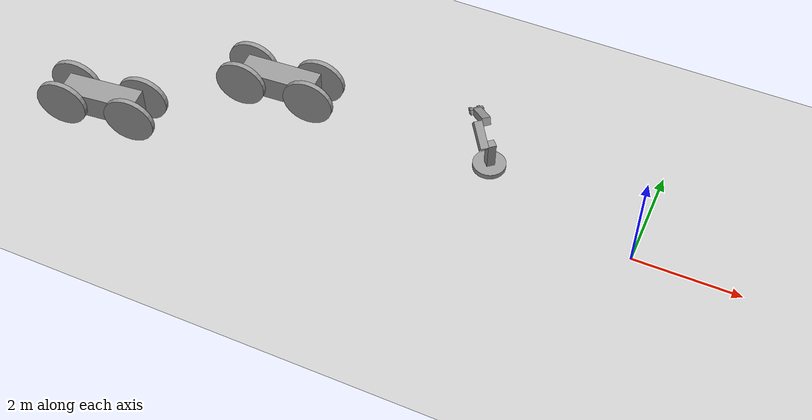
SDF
<sdf version="1.7">
 <world name="default">
  <model name="ground_plane">
   <static>1</static>
   <link name="link">
    <collision name="collision">
     <geometry><plane><normal>0 0 1</normal><size>100 100</size></plane></geometry>
     <surface>
      <contact><collide_bitmask>65535</collide_bitmask></contact>
      <friction><ode><mu>100</mu><mu2>50</mu2></ode></friction>
     </surface>
    </collision>
    <visual name="visual">
     <cast_shadows>0</cast_shadows>
     <geometry><plane><normal>0 0 1</normal><size>100 100</size></plane></geometry>
     <material>
      <script><uri>file://media/materials/scripts/gazebo.material</uri><name>Gazebo/Grey</name></script>
     </material>
    </visual>
   </link>
  </model>
  <model name="car_robot">
   <link name="link_0">
    <inertial>
     <mass>1</mass>
     <inertia>
      <ixx>0.166667</ixx>
      <ixy>0</ixy>
      <ixz>0</ixz>
      <iyy>0.166667</iyy>
      <iyz>0</iyz>
      <izz>0.166667</izz>
     </inertia>
    </inertial>
    <pose>-0.017732 0 0 0 -0 0</pose>
    <visual name="visual">
     <geometry><box><size>1.5 0.5 0.5</size></box></geometry>
     <material>
      <lighting>1</lighting>
      <script><uri>file://media/materials/scripts/gazebo.material</uri><name>Gazebo/Grey</name></script>
      <shader type="pixel"><normal_map>__default__</normal_map></shader>
      <ambient>0.3 0.3 0.3 1</ambient>
      <diffuse>0.7 0.7 0.7 1</diffuse>
      <specular>0.01 0.01 0.01 1</specular>
      <emissive>0 0 0 1</emissive>
     </material>
    </visual>
    <collision name="collision">
     <geometry><box><size>1.5 0.5 0.5</size></box></geometry>
     <surface>
      <friction>
       <ode><mu>1</mu><mu2>1</mu2><fdir1>0 0 0</fdir1><slip1>0</slip1><slip2>0</slip2></ode>
       <torsional>
        <coefficient>1</coefficient>
        <patch_radius>0</patch_radius>
        <surface_radius>0</surface_radius>
        <use_patch_radius>1</use_patch_radius>
        <ode><slip>0</slip></ode>
       </torsional>
      </friction>
      <bounce><restitution_coefficient>0</restitution_coefficient><threshold>1e+06</threshold></bounce>
      <contact>
       <collide_without_contact>0</collide_without_contact>
       <collide_without_contact_bitmask>1</collide_without_contact_bitmask>
       <collide_bitmask>1</collide_bitmask>
       <ode>
        <soft_cfm>0</soft_cfm>
        <soft_erp>0.2</soft_erp>
        <kp>1e+13</kp>
        <kd>1</kd>
        <max_vel>0.01</max_vel>
        <min_depth>0</min_depth>
       </ode>
       <bullet>
        <split_impulse>1</split_impulse>
        <split_impulse_penetration_threshold>-0.01</split_impulse_penetration_threshold>
        <soft_cfm>0</soft_cfm>
        <soft_erp>0.2</soft_erp>
        <kp>1e+13</kp>
        <kd>1</kd>
       </bullet>
      </contact>
     </surface>
    </collision>
   </link>
   <link name="link_1">
    <inertial>
     <mass>1</mass>
     <inertia><ixx>0.145833</ixx><ixy>0</ixy><ixz>0</ixz><iyy>0.145833</iyy><iyz>0</iyz><izz>0.125</izz></inertia>
    </inertial>
    <pose>-0.717732 -0.300002 0 1.5708 -0 0</pose>
    <visual name="visual">
     <geometry><cylinder><radius>0.5</radius><length>0.1</length></cylinder></geometry>
     <material>
      <lighting>1</lighting>
      <script><uri>file://media/materials/scripts/gazebo.material</uri><name>Gazebo/Grey</name></script>
      <shader type="pixel"><normal_map>__default__</normal_map></shader>
      <ambient>0.3 0.3 0.3 1</ambient>
      <diffuse>0.7 0.7 0.7 1</diffuse>
      <specular>0.01 0.01 0.01 1</specular>
      <emissive>0 0 0 1</emissive>
     </material>
    </visual>
    <collision name="collision">
     <geometry><cylinder><radius>0.5</radius><length>0.1</length></cylinder></geometry>
     <surface>
      <friction>
       <ode><mu>1</mu><mu2>1</mu2><fdir1>0 0 0</fdir1><slip1>0</slip1><slip2>0</slip2></ode>
       <torsional>
        <coefficient>1</coefficient>
        <patch_radius>0</patch_radius>
        <surface_radius>0</surface_radius>
        <use_patch_radius>1</use_patch_radius>
        <ode><slip>0</slip></ode>
       </torsional>
      </friction>
      <bounce><restitution_coefficient>0</restitution_coefficient><threshold>1e+06</threshold></bounce>
      <contact>
       <collide_without_contact>0</collide_without_contact>
       <collide_without_contact_bitmask>1</collide_without_contact_bitmask>
       <collide_bitmask>1</collide_bitmask>
       <ode>
        <soft_cfm>0</soft_cfm>
        <soft_erp>0.2</soft_erp>
        <kp>1e+13</kp>
        <kd>1</kd>
        <max_vel>0.01</max_vel>
        <min_depth>0</min_depth>
       </ode>
       <bullet>
        <split_impulse>1</split_impulse>
        <split_impulse_penetration_threshold>-0.01</split_impulse_penetration_threshold>
        <soft_cfm>0</soft_cfm>
        <soft_erp>0.2</soft_erp>
        <kp>1e+13</kp>
        <kd>1</kd>
       </bullet>
      </contact>
     </surface>
    </collision>
   </link>
   <link name="link_1_clone">
    <inertial>
     <mass>1</mass>
     <inertia><ixx>0.145833</ixx><ixy>0</ixy><ixz>0</ixz><iyy>0.145833</iyy><iyz>0</iyz><izz>0.125</izz></inertia>
    </inertial>
    <pose>0.682268 -0.300002 0 1.5708 -0 0</pose>
    <visual name="visual">
     <geometry><cylinder><radius>0.5</radius><length>0.1</length></cylinder></geometry>
     <material>
      <lighting>1</lighting>
      <script><uri>file://media/materials/scripts/gazebo.material</uri><name>Gazebo/Grey</name></script>
      <shader type="pixel"><normal_map>__default__</normal_map></shader>
      <ambient>0.3 0.3 0.3 1</ambient>
      <diffuse>0.7 0.7 0.7 1</diffuse>
      <specular>0.01 0.01 0.01 1</specular>
      <emissive>0 0 0 1</emissive>
     </material>
    </visual>
    <collision name="collision">
     <geometry><cylinder><radius>0.5</radius><length>0.1</length></cylinder></geometry>
     <surface>
      <friction>
       <ode><mu>1</mu><mu2>1</mu2><fdir1>0 0 0</fdir1><slip1>0</slip1><slip2>0</slip2></ode>
       <torsional>
        <coefficient>1</coefficient>
        <patch_radius>0</patch_radius>
        <surface_radius>0</surface_radius>
        <use_patch_radius>1</use_patch_radius>
        <ode><slip>0</slip></ode>
       </torsional>
      </friction>
      <bounce><restitution_coefficient>0</restitution_coefficient><threshold>1e+06</threshold></bounce>
      <contact>
       <collide_without_contact>0</collide_without_contact>
       <collide_without_contact_bitmask>1</collide_without_contact_bitmask>
       <collide_bitmask>1</collide_bitmask>
       <ode>
        <soft_cfm>0</soft_cfm>
        <soft_erp>0.2</soft_erp>
        <kp>1e+13</kp>
        <kd>1</kd>
        <max_vel>0.01</max_vel>
        <min_depth>0</min_depth>
       </ode>
       <bullet>
        <split_impulse>1</split_impulse>
        <split_impulse_penetration_threshold>-0.01</split_impulse_penetration_threshold>
        <soft_cfm>0</soft_cfm>
        <soft_erp>0.2</soft_erp>
        <kp>1e+13</kp>
        <kd>1</kd>
       </bullet>
      </contact>
     </surface>
    </collision>
   </link>
   <link name="link_1_clone_0">
    <inertial>
     <mass>1</mass>
     <inertia><ixx>0.145833</ixx><ixy>0</ixy><ixz>0</ixz><iyy>0.145833</iyy><iyz>0</iyz><izz>0.125</izz></inertia>
    </inertial>
    <pose>-0.717732 0.300002 0 1.5708 -0 0</pose>
    <visual name="visual">
     <geometry><cylinder><radius>0.5</radius><length>0.1</length></cylinder></geometry>
     <material>
      <lighting>1</lighting>
      <script><uri>file://media/materials/scripts/gazebo.material</uri><name>Gazebo/Grey</name></script>
      <shader type="pixel"><normal_map>__default__</normal_map></shader>
      <ambient>0.3 0.3 0.3 1</ambient>
      <diffuse>0.7 0.7 0.7 1</diffuse>
      <specular>0.01 0.01 0.01 1</specular>
      <emissive>0 0 0 1</emissive>
     </material>
    </visual>
    <collision name="collision">
     <geometry><cylinder><radius>0.5</radius><length>0.1</length></cylinder></geometry>
     <surface>
      <friction>
       <ode><mu>1</mu><mu2>1</mu2><fdir1>0 0 0</fdir1><slip1>0</slip1><slip2>0</slip2></ode>
       <torsional>
        <coefficient>1</coefficient>
        <patch_radius>0</patch_radius>
        <surface_radius>0</surface_radius>
        <use_patch_radius>1</use_patch_radius>
        <ode><slip>0</slip></ode>
       </torsional>
      </friction>
      <bounce><restitution_coefficient>0</restitution_coefficient><threshold>1e+06</threshold></bounce>
      <contact>
       <collide_without_contact>0</collide_without_contact>
       <collide_without_contact_bitmask>1</collide_without_contact_bitmask>
       <collide_bitmask>1</collide_bitmask>
       <ode>
        <soft_cfm>0</soft_cfm>
        <soft_erp>0.2</soft_erp>
        <kp>1e+13</kp>
        <kd>1</kd>
        <max_vel>0.01</max_vel>
        <min_depth>0</min_depth>
       </ode>
       <bullet>
        <split_impulse>1</split_impulse>
        <split_impulse_penetration_threshold>-0.01</split_impulse_penetration_threshold>
        <soft_cfm>0</soft_cfm>
        <soft_erp>0.2</soft_erp>
        <kp>1e+13</kp>
        <kd>1</kd>
       </bullet>
      </contact>
     </surface>
    </collision>
   </link>
   <link name="link_1_clone_1">
    <inertial>
     <mass>1</mass>
     <inertia><ixx>0.145833</ixx><ixy>0</ixy><ixz>0</ixz><iyy>0.145833</iyy><iyz>0</iyz><izz>0.125</izz></inertia>
    </inertial>
    <pose>0.682268 0.300002 0 1.5708 -0 0</pose>
    <visual name="visual">
     <geometry><cylinder><radius>0.5</radius><length>0.1</length></cylinder></geometry>
     <material>
      <lighting>1</lighting>
      <script><uri>file://media/materials/scripts/gazebo.material</uri><name>Gazebo/Grey</name></script>
      <shader type="pixel"><normal_map>__default__</normal_map></shader>
      <ambient>0.3 0.3 0.3 1</ambient>
      <diffuse>0.7 0.7 0.7 1</diffuse>
      <specular>0.01 0.01 0.01 1</specular>
      <emissive>0 0 0 1</emissive>
     </material>
    </visual>
    <collision name="collision">
     <geometry><cylinder><radius>0.5</radius><length>0.1</length></cylinder></geometry>
     <surface>
      <friction>
       <ode><mu>1</mu><mu2>1</mu2><fdir1>0 0 0</fdir1><slip1>0</slip1><slip2>0</slip2></ode>
       <torsional>
        <coefficient>1</coefficient>
        <patch_radius>0</patch_radius>
        <surface_radius>0</surface_radius>
        <use_patch_radius>1</use_patch_radius>
        <ode><slip>0</slip></ode>
       </torsional>
      </friction>
      <bounce><restitution_coefficient>0</restitution_coefficient><threshold>1e+06</threshold></bounce>
      <contact>
       <collide_without_contact>0</collide_without_contact>
       <collide_without_contact_bitmask>1</collide_without_contact_bitmask>
       <collide_bitmask>1</collide_bitmask>
       <ode>
        <soft_cfm>0</soft_cfm>
        <soft_erp>0.2</soft_erp>
        <kp>1e+13</kp>
        <kd>1</kd>
        <max_vel>0.01</max_vel>
        <min_depth>0</min_depth>
       </ode>
       <bullet>
        <split_impulse>1</split_impulse>
        <split_impulse_penetration_threshold>-0.01</split_impulse_penetration_threshold>
        <soft_cfm>0</soft_cfm>
        <soft_erp>0.2</soft_erp>
        <kp>1e+13</kp>
        <kd>1</kd>
       </bullet>
      </contact>
     </surface>
    </collision>
   </link>
   <joint name="link_0_JOINT_0" type="revolute">
    <parent>link_0</parent>
    <child>link_1</child>
    <pose>0 0 0 -0.01 0 0</pose>
    <axis>
     <xyz>0 0 1</xyz>
     <limit>
      <lower>-1.79769e+308</lower>
      <upper>1.79769e+308</upper>
      <effort>-1</effort>
      <velocity>-1</velocity>
     </limit>
     <dynamics>
      <spring_reference>0</spring_reference>
      <spring_stiffness>0</spring_stiffness>
      <damping>0</damping>
     </dynamics>
    </axis>
    <physics>
     <ode><limit><cfm>0</cfm><erp>0.2</erp></limit><suspension><cfm>0</cfm><erp>0.2</erp></suspension></ode>
    </physics>
   </joint>
   <joint name="link_0_JOINT_1" type="revolute">
    <parent>link_0</parent>
    <child>link_1_clone</child>
    <axis>
     <xyz>0 0 1</xyz>
     <limit>
      <lower>-1.79769e+308</lower>
      <upper>1.79769e+308</upper>
      <effort>-1</effort>
      <velocity>-1</velocity>
     </limit>
     <dynamics>
      <spring_reference>0</spring_reference>
      <spring_stiffness>0</spring_stiffness>
      <damping>0</damping>
     </dynamics>
    </axis>
    <physics>
     <ode><limit><cfm>0</cfm><erp>0.2</erp></limit><suspension><cfm>0</cfm><erp>0.2</erp></suspension></ode>
    </physics>
   </joint>
   <joint name="link_0_JOINT_2" type="revolute">
    <parent>link_0</parent>
    <child>link_1_clone_1</child>
    <axis>
     <xyz>0 0 1</xyz>
     <limit>
      <lower>-1.79769e+308</lower>
      <upper>1.79769e+308</upper>
      <effort>-1</effort>
      <velocity>-1</velocity>
     </limit>
     <dynamics>
      <spring_reference>0</spring_reference>
      <spring_stiffness>0</spring_stiffness>
      <damping>0</damping>
     </dynamics>
    </axis>
    <physics>
     <ode><limit><cfm>0</cfm><erp>0.2</erp></limit><suspension><cfm>0</cfm><erp>0.2</erp></suspension></ode>
    </physics>
   </joint>
   <joint name="link_0_JOINT_3" type="revolute">
    <parent>link_0</parent>
    <child>link_1_clone_0</child>
    <axis>
     <xyz>0 0 1</xyz>
     <limit>
      <lower>-1.79769e+308</lower>
      <upper>1.79769e+308</upper>
      <effort>-1</effort>
      <velocity>-1</velocity>
     </limit>
     <dynamics>
      <spring_reference>0</spring_reference>
      <spring_stiffness>0</spring_stiffness>
      <damping>0</damping>
     </dynamics>
    </axis>
    <physics>
     <ode><limit><cfm>0</cfm><erp>0.2</erp></limit><suspension><cfm>0</cfm><erp>0.2</erp></suspension></ode>
    </physics>
   </joint>
   <static>0</static>
   <pose>-7.34876 0.924185 0.500001 -1e-06 1e-06 0.057087</pose>
  </model>
  <model name="car_robot_0">
   <link name="link_0">
    <inertial>
     <mass>1</mass>
     <inertia>
      <ixx>0.166667</ixx>
      <ixy>0</ixy>
      <ixz>0</ixz>
      <iyy>0.166667</iyy>
      <iyz>0</iyz>
      <izz>0.166667</izz>
     </inertia>
    </inertial>
    <pose>-0.017732 0 0 0 -0 0</pose>
    <visual name="visual">
     <geometry><box><size>1.5 0.5 0.5</size></box></geometry>
     <material>
      <lighting>1</lighting>
      <script><uri>file://media/materials/scripts/gazebo.material</uri><name>Gazebo/Grey</name></script>
      <shader type="pixel"><normal_map>__default__</normal_map></shader>
      <ambient>0.3 0.3 0.3 1</ambient>
      <diffuse>0.7 0.7 0.7 1</diffuse>
      <specular>0.01 0.01 0.01 1</specular>
      <emissive>0 0 0 1</emissive>
     </material>
    </visual>
    <collision name="collision">
     <geometry><box><size>1.5 0.5 0.5</size></box></geometry>
     <surface>
      <friction>
       <ode><mu>1</mu><mu2>1</mu2><fdir1>0 0 0</fdir1><slip1>0</slip1><slip2>0</slip2></ode>
       <torsional>
        <coefficient>1</coefficient>
        <patch_radius>0</patch_radius>
        <surface_radius>0</surface_radius>
        <use_patch_radius>1</use_patch_radius>
        <ode><slip>0</slip></ode>
       </torsional>
      </friction>
      <bounce><restitution_coefficient>0</restitution_coefficient><threshold>1e+06</threshold></bounce>
      <contact>
       <collide_without_contact>0</collide_without_contact>
       <collide_without_contact_bitmask>1</collide_without_contact_bitmask>
       <collide_bitmask>1</collide_bitmask>
       <ode>
        <soft_cfm>0</soft_cfm>
        <soft_erp>0.2</soft_erp>
        <kp>1e+13</kp>
        <kd>1</kd>
        <max_vel>0.01</max_vel>
        <min_depth>0</min_depth>
       </ode>
       <bullet>
        <split_impulse>1</split_impulse>
        <split_impulse_penetration_threshold>-0.01</split_impulse_penetration_threshold>
        <soft_cfm>0</soft_cfm>
        <soft_erp>0.2</soft_erp>
        <kp>1e+13</kp>
        <kd>1</kd>
       </bullet>
      </contact>
     </surface>
    </collision>
   </link>
   <link name="link_1">
    <inertial>
     <mass>1</mass>
     <inertia><ixx>0.145833</ixx><ixy>0</ixy><ixz>0</ixz><iyy>0.145833</iyy><iyz>0</iyz><izz>0.125</izz></inertia>
    </inertial>
    <pose>-0.717732 -0.300002 0 1.5708 -0 0</pose>
    <visual name="visual">
     <geometry><cylinder><radius>0.5</radius><length>0.1</length></cylinder></geometry>
     <material>
      <lighting>1</lighting>
      <script><uri>file://media/materials/scripts/gazebo.material</uri><name>Gazebo/Grey</name></script>
      <shader type="pixel"><normal_map>__default__</normal_map></shader>
      <ambient>0.3 0.3 0.3 1</ambient>
      <diffuse>0.7 0.7 0.7 1</diffuse>
      <specular>0.01 0.01 0.01 1</specular>
      <emissive>0 0 0 1</emissive>
     </material>
    </visual>
    <collision name="collision">
     <geometry><cylinder><radius>0.5</radius><length>0.1</length></cylinder></geometry>
     <surface>
      <friction>
       <ode><mu>1</mu><mu2>1</mu2><fdir1>0 0 0</fdir1><slip1>0</slip1><slip2>0</slip2></ode>
       <torsional>
        <coefficient>1</coefficient>
        <patch_radius>0</patch_radius>
        <surface_radius>0</surface_radius>
        <use_patch_radius>1</use_patch_radius>
        <ode><slip>0</slip></ode>
       </torsional>
      </friction>
      <bounce><restitution_coefficient>0</restitution_coefficient><threshold>1e+06</threshold></bounce>
      <contact>
       <collide_without_contact>0</collide_without_contact>
       <collide_without_contact_bitmask>1</collide_without_contact_bitmask>
       <collide_bitmask>1</collide_bitmask>
       <ode>
        <soft_cfm>0</soft_cfm>
        <soft_erp>0.2</soft_erp>
        <kp>1e+13</kp>
        <kd>1</kd>
        <max_vel>0.01</max_vel>
        <min_depth>0</min_depth>
       </ode>
       <bullet>
        <split_impulse>1</split_impulse>
        <split_impulse_penetration_threshold>-0.01</split_impulse_penetration_threshold>
        <soft_cfm>0</soft_cfm>
        <soft_erp>0.2</soft_erp>
        <kp>1e+13</kp>
        <kd>1</kd>
       </bullet>
      </contact>
     </surface>
    </collision>
   </link>
   <link name="link_1_clone">
    <inertial>
     <mass>1</mass>
     <inertia><ixx>0.145833</ixx><ixy>0</ixy><ixz>0</ixz><iyy>0.145833</iyy><iyz>0</iyz><izz>0.125</izz></inertia>
    </inertial>
    <pose>0.682268 -0.300002 0 1.5708 -0 0</pose>
    <visual name="visual">
     <geometry><cylinder><radius>0.5</radius><length>0.1</length></cylinder></geometry>
     <material>
      <lighting>1</lighting>
      <script><uri>file://media/materials/scripts/gazebo.material</uri><name>Gazebo/Grey</name></script>
      <shader type="pixel"><normal_map>__default__</normal_map></shader>
      <ambient>0.3 0.3 0.3 1</ambient>
      <diffuse>0.7 0.7 0.7 1</diffuse>
      <specular>0.01 0.01 0.01 1</specular>
      <emissive>0 0 0 1</emissive>
     </material>
    </visual>
    <collision name="collision">
     <geometry><cylinder><radius>0.5</radius><length>0.1</length></cylinder></geometry>
     <surface>
      <friction>
       <ode><mu>1</mu><mu2>1</mu2><fdir1>0 0 0</fdir1><slip1>0</slip1><slip2>0</slip2></ode>
       <torsional>
        <coefficient>1</coefficient>
        <patch_radius>0</patch_radius>
        <surface_radius>0</surface_radius>
        <use_patch_radius>1</use_patch_radius>
        <ode><slip>0</slip></ode>
       </torsional>
      </friction>
      <bounce><restitution_coefficient>0</restitution_coefficient><threshold>1e+06</threshold></bounce>
      <contact>
       <collide_without_contact>0</collide_without_contact>
       <collide_without_contact_bitmask>1</collide_without_contact_bitmask>
       <collide_bitmask>1</collide_bitmask>
       <ode>
        <soft_cfm>0</soft_cfm>
        <soft_erp>0.2</soft_erp>
        <kp>1e+13</kp>
        <kd>1</kd>
        <max_vel>0.01</max_vel>
        <min_depth>0</min_depth>
       </ode>
       <bullet>
        <split_impulse>1</split_impulse>
        <split_impulse_penetration_threshold>-0.01</split_impulse_penetration_threshold>
        <soft_cfm>0</soft_cfm>
        <soft_erp>0.2</soft_erp>
        <kp>1e+13</kp>
        <kd>1</kd>
       </bullet>
      </contact>
     </surface>
    </collision>
   </link>
   <link name="link_1_clone_0">
    <inertial>
     <mass>1</mass>
     <inertia><ixx>0.145833</ixx><ixy>0</ixy><ixz>0</ixz><iyy>0.145833</iyy><iyz>0</iyz><izz>0.125</izz></inertia>
    </inertial>
    <pose>-0.717732 0.300002 0 1.5708 -0 0</pose>
    <visual name="visual">
     <geometry><cylinder><radius>0.5</radius><length>0.1</length></cylinder></geometry>
     <material>
      <lighting>1</lighting>
      <script><uri>file://media/materials/scripts/gazebo.material</uri><name>Gazebo/Grey</name></script>
      <shader type="pixel"><normal_map>__default__</normal_map></shader>
      <ambient>0.3 0.3 0.3 1</ambient>
      <diffuse>0.7 0.7 0.7 1</diffuse>
      <specular>0.01 0.01 0.01 1</specular>
      <emissive>0 0 0 1</emissive>
     </material>
    </visual>
    <collision name="collision">
     <geometry><cylinder><radius>0.5</radius><length>0.1</length></cylinder></geometry>
     <surface>
      <friction>
       <ode><mu>1</mu><mu2>1</mu2><fdir1>0 0 0</fdir1><slip1>0</slip1><slip2>0</slip2></ode>
       <torsional>
        <coefficient>1</coefficient>
        <patch_radius>0</patch_radius>
        <surface_radius>0</surface_radius>
        <use_patch_radius>1</use_patch_radius>
        <ode><slip>0</slip></ode>
       </torsional>
      </friction>
      <bounce><restitution_coefficient>0</restitution_coefficient><threshold>1e+06</threshold></bounce>
      <contact>
       <collide_without_contact>0</collide_without_contact>
       <collide_without_contact_bitmask>1</collide_without_contact_bitmask>
       <collide_bitmask>1</collide_bitmask>
       <ode>
        <soft_cfm>0</soft_cfm>
        <soft_erp>0.2</soft_erp>
        <kp>1e+13</kp>
        <kd>1</kd>
        <max_vel>0.01</max_vel>
        <min_depth>0</min_depth>
       </ode>
       <bullet>
        <split_impulse>1</split_impulse>
        <split_impulse_penetration_threshold>-0.01</split_impulse_penetration_threshold>
        <soft_cfm>0</soft_cfm>
        <soft_erp>0.2</soft_erp>
        <kp>1e+13</kp>
        <kd>1</kd>
       </bullet>
      </contact>
     </surface>
    </collision>
   </link>
   <link name="link_1_clone_1">
    <inertial>
     <mass>1</mass>
     <inertia><ixx>0.145833</ixx><ixy>0</ixy><ixz>0</ixz><iyy>0.145833</iyy><iyz>0</iyz><izz>0.125</izz></inertia>
    </inertial>
    <pose>0.682268 0.300002 0 1.5708 -0 0</pose>
    <visual name="visual">
     <geometry><cylinder><radius>0.5</radius><length>0.1</length></cylinder></geometry>
     <material>
      <lighting>1</lighting>
      <script><uri>file://media/materials/scripts/gazebo.material</uri><name>Gazebo/Grey</name></script>
      <shader type="pixel"><normal_map>__default__</normal_map></shader>
      <ambient>0.3 0.3 0.3 1</ambient>
      <diffuse>0.7 0.7 0.7 1</diffuse>
      <specular>0.01 0.01 0.01 1</specular>
      <emissive>0 0 0 1</emissive>
     </material>
    </visual>
    <collision name="collision">
     <geometry><cylinder><radius>0.5</radius><length>0.1</length></cylinder></geometry>
     <surface>
      <friction>
       <ode><mu>1</mu><mu2>1</mu2><fdir1>0 0 0</fdir1><slip1>0</slip1><slip2>0</slip2></ode>
       <torsional>
        <coefficient>1</coefficient>
        <patch_radius>0</patch_radius>
        <surface_radius>0</surface_radius>
        <use_patch_radius>1</use_patch_radius>
        <ode><slip>0</slip></ode>
       </torsional>
      </friction>
      <bounce><restitution_coefficient>0</restitution_coefficient><threshold>1e+06</threshold></bounce>
      <contact>
       <collide_without_contact>0</collide_without_contact>
       <collide_without_contact_bitmask>1</collide_without_contact_bitmask>
       <collide_bitmask>1</collide_bitmask>
       <ode>
        <soft_cfm>0</soft_cfm>
        <soft_erp>0.2</soft_erp>
        <kp>1e+13</kp>
        <kd>1</kd>
        <max_vel>0.01</max_vel>
        <min_depth>0</min_depth>
       </ode>
       <bullet>
        <split_impulse>1</split_impulse>
        <split_impulse_penetration_threshold>-0.01</split_impulse_penetration_threshold>
        <soft_cfm>0</soft_cfm>
        <soft_erp>0.2</soft_erp>
        <kp>1e+13</kp>
        <kd>1</kd>
       </bullet>
      </contact>
     </surface>
    </collision>
   </link>
   <joint name="link_0_JOINT_0" type="revolute">
    <parent>link_0</parent>
    <child>link_1</child>
    <pose>0 0 0 -0.01 0 0</pose>
    <axis>
     <xyz>0 0 1</xyz>
     <limit>
      <lower>-1.79769e+308</lower>
      <upper>1.79769e+308</upper>
      <effort>-1</effort>
      <velocity>-1</velocity>
     </limit>
     <dynamics>
      <spring_reference>0</spring_reference>
      <spring_stiffness>0</spring_stiffness>
      <damping>0</damping>
     </dynamics>
    </axis>
    <physics>
     <ode><limit><cfm>0</cfm><erp>0.2</erp></limit><suspension><cfm>0</cfm><erp>0.2</erp></suspension></ode>
    </physics>
   </joint>
   <joint name="link_0_JOINT_1" type="revolute">
    <parent>link_0</parent>
    <child>link_1_clone</child>
    <axis>
     <xyz>0 0 1</xyz>
     <limit>
      <lower>-1.79769e+308</lower>
      <upper>1.79769e+308</upper>
      <effort>-1</effort>
      <velocity>-1</velocity>
     </limit>
     <dynamics>
      <spring_reference>0</spring_reference>
      <spring_stiffness>0</spring_stiffness>
      <damping>0</damping>
     </dynamics>
    </axis>
    <physics>
     <ode><limit><cfm>0</cfm><erp>0.2</erp></limit><suspension><cfm>0</cfm><erp>0.2</erp></suspension></ode>
    </physics>
   </joint>
   <joint name="link_0_JOINT_2" type="revolute">
    <parent>link_0</parent>
    <child>link_1_clone_1</child>
    <axis>
     <xyz>0 0 1</xyz>
     <limit>
      <lower>-1.79769e+308</lower>
      <upper>1.79769e+308</upper>
      <effort>-1</effort>
      <velocity>-1</velocity>
     </limit>
     <dynamics>
      <spring_reference>0</spring_reference>
      <spring_stiffness>0</spring_stiffness>
      <damping>0</damping>
     </dynamics>
    </axis>
    <physics>
     <ode><limit><cfm>0</cfm><erp>0.2</erp></limit><suspension><cfm>0</cfm><erp>0.2</erp></suspension></ode>
    </physics>
   </joint>
   <joint name="link_0_JOINT_3" type="revolute">
    <parent>link_0</parent>
    <child>link_1_clone_0</child>
    <axis>
     <xyz>0 0 1</xyz>
     <limit>
      <lower>-1.79769e+308</lower>
      <upper>1.79769e+308</upper>
      <effort>-1</effort>
      <velocity>-1</velocity>
     </limit>
     <dynamics>
      <spring_reference>0</spring_reference>
      <spring_stiffness>0</spring_stiffness>
      <damping>0</damping>
     </dynamics>
    </axis>
    <physics>
     <ode><limit><cfm>0</cfm><erp>0.2</erp></limit><suspension><cfm>0</cfm><erp>0.2</erp></suspension></ode>
    </physics>
   </joint>
   <static>0</static>
   <pose>-10.2037 -0.89855 0.5 -2e-06 1e-06 0.100051</pose>
  </model>
  <model name="fixed_arm_robot_clone_1_clone_clone">
   <link name="link_0">
    <inertial>
     <mass>1</mass>
     <inertia><ixx>0.145833</ixx><ixy>0</ixy><ixz>0</ixz><iyy>0.145833</iyy><iyz>0</iyz><izz>0.125</izz></inertia>
    </inertial>
    <pose>-0.37347 -0.501985 -0.410714 0 -0 0</pose>
    <visual name="visual">
     <geometry><cylinder><radius>0.3</radius><length>0.1</length></cylinder></geometry>
     <material>
      <lighting>1</lighting>
      <script><uri>file://media/materials/scripts/gazebo.material</uri><name>Gazebo/Grey</name></script>
      <shader type="pixel"><normal_map>__default__</normal_map></shader>
      <ambient>0.3 0.3 0.3 1</ambient>
      <diffuse>0.7 0.7 0.7 1</diffuse>
      <specular>0.01 0.01 0.01 1</specular>
      <emissive>0 0 0 1</emissive>
     </material>
    </visual>
    <collision name="collision">
     <geometry><cylinder><radius>0.3</radius><length>0.1</length></cylinder></geometry>
     <surface>
      <friction>
       <ode><mu>1</mu><mu2>1</mu2><fdir1>0 0 0</fdir1><slip1>0</slip1><slip2>0</slip2></ode>
       <torsional>
        <coefficient>1</coefficient>
        <patch_radius>0</patch_radius>
        <surface_radius>0</surface_radius>
        <use_patch_radius>1</use_patch_radius>
        <ode><slip>0</slip></ode>
       </torsional>
      </friction>
      <bounce><restitution_coefficient>0</restitution_coefficient><threshold>1e+06</threshold></bounce>
      <contact>
       <collide_without_contact>0</collide_without_contact>
       <collide_without_contact_bitmask>1</collide_without_contact_bitmask>
       <collide_bitmask>1</collide_bitmask>
       <ode>
        <soft_cfm>0</soft_cfm>
        <soft_erp>0.2</soft_erp>
        <kp>1e+13</kp>
        <kd>1</kd>
        <max_vel>0.01</max_vel>
        <min_depth>0</min_depth>
       </ode>
       <bullet>
        <split_impulse>1</split_impulse>
        <split_impulse_penetration_threshold>-0.01</split_impulse_penetration_threshold>
        <soft_cfm>0</soft_cfm>
        <soft_erp>0.2</soft_erp>
        <kp>1e+13</kp>
        <kd>1</kd>
       </bullet>
      </contact>
     </surface>
    </collision>
   </link>
   <link name="link_1">
    <inertial>
     <mass>1</mass>
     <inertia>
      <ixx>0.166667</ixx>
      <ixy>0</ixy>
      <ixz>0</ixz>
      <iyy>0.166667</iyy>
      <iyz>0</iyz>
      <izz>0.166667</izz>
     </inertia>
    </inertial>
    <pose>-0.37347 -0.501985 -0.110714 0 -0 0</pose>
    <visual name="visual">
     <geometry><box><size>0.15 0.15 0.5</size></box></geometry>
     <material>
      <lighting>1</lighting>
      <script><uri>file://media/materials/scripts/gazebo.material</uri><name>Gazebo/Grey</name></script>
      <shader type="pixel"><normal_map>__default__</normal_map></shader>
      <ambient>0.3 0.3 0.3 1</ambient>
      <diffuse>0.7 0.7 0.7 1</diffuse>
      <specular>0.01 0.01 0.01 1</specular>
      <emissive>0 0 0 1</emissive>
     </material>
    </visual>
    <collision name="collision">
     <geometry><box><size>0.15 0.15 0.5</size></box></geometry>
     <surface>
      <friction>
       <ode><mu>1</mu><mu2>1</mu2><fdir1>0 0 0</fdir1><slip1>0</slip1><slip2>0</slip2></ode>
       <torsional>
        <coefficient>1</coefficient>
        <patch_radius>0</patch_radius>
        <surface_radius>0</surface_radius>
        <use_patch_radius>1</use_patch_radius>
        <ode><slip>0</slip></ode>
       </torsional>
      </friction>
      <bounce><restitution_coefficient>0</restitution_coefficient><threshold>1e+06</threshold></bounce>
      <contact>
       <collide_without_contact>0</collide_without_contact>
       <collide_without_contact_bitmask>1</collide_without_contact_bitmask>
       <collide_bitmask>1</collide_bitmask>
       <ode>
        <soft_cfm>0</soft_cfm>
        <soft_erp>0.2</soft_erp>
        <kp>1e+13</kp>
        <kd>1</kd>
        <max_vel>0.01</max_vel>
        <min_depth>0</min_depth>
       </ode>
       <bullet>
        <split_impulse>1</split_impulse>
        <split_impulse_penetration_threshold>-0.01</split_impulse_penetration_threshold>
        <soft_cfm>0</soft_cfm>
        <soft_erp>0.2</soft_erp>
        <kp>1e+13</kp>
        <kd>1</kd>
       </bullet>
      </contact>
     </surface>
    </collision>
   </link>
   <link name="link_1_clone">
    <inertial>
     <mass>1</mass>
     <inertia>
      <ixx>0.166667</ixx>
      <ixy>0</ixy>
      <ixz>0</ixz>
      <iyy>0.166667</iyy>
      <iyz>0</iyz>
      <izz>0.166667</izz>
     </inertia>
    </inertial>
    <pose>-0.37347 -0.351985 0.139286 0 1 0</pose>
    <visual name="visual">
     <pose>0 0 0.175 0 -0 0</pose>
     <geometry><box><size>0.15 0.15 0.5</size></box></geometry>
     <material>
      <lighting>1</lighting>
      <script><uri>file://media/materials/scripts/gazebo.material</uri><name>Gazebo/Grey</name></script>
      <shader type="pixel"><normal_map>__default__</normal_map></shader>
      <ambient>0.3 0.3 0.3 1</ambient>
      <diffuse>0.7 0.7 0.7 1</diffuse>
      <specular>0.01 0.01 0.01 1</specular>
      <emissive>0 0 0 1</emissive>
     </material>
    </visual>
    <collision name="collision">
     <pose>0 0 0.175 0 -0 0</pose>
     <geometry><box><size>0.15 0.15 0.5</size></box></geometry>
     <surface>
      <friction>
       <ode><mu>1</mu><mu2>1</mu2><fdir1>0 0 0</fdir1><slip1>0</slip1><slip2>0</slip2></ode>
       <torsional>
        <coefficient>1</coefficient>
        <patch_radius>0</patch_radius>
        <surface_radius>0</surface_radius>
        <use_patch_radius>1</use_patch_radius>
        <ode><slip>0</slip></ode>
       </torsional>
      </friction>
      <bounce><restitution_coefficient>0</restitution_coefficient><threshold>1e+06</threshold></bounce>
      <contact>
       <collide_without_contact>0</collide_without_contact>
       <collide_without_contact_bitmask>1</collide_without_contact_bitmask>
       <collide_bitmask>1</collide_bitmask>
       <ode>
        <soft_cfm>0</soft_cfm>
        <soft_erp>0.2</soft_erp>
        <kp>1e+13</kp>
        <kd>1</kd>
        <max_vel>0.01</max_vel>
        <min_depth>0</min_depth>
       </ode>
       <bullet>
        <split_impulse>1</split_impulse>
        <split_impulse_penetration_threshold>-0.01</split_impulse_penetration_threshold>
        <soft_cfm>0</soft_cfm>
        <soft_erp>0.2</soft_erp>
        <kp>1e+13</kp>
        <kd>1</kd>
       </bullet>
      </contact>
     </surface>
    </collision>
   </link>
   <link name="link_1_clone_clone">
    <inertial>
     <mass>1</mass>
     <inertia>
      <ixx>0.166667</ixx>
      <ixy>0</ixy>
      <ixz>0</ixz>
      <iyy>0.166667</iyy>
      <iyz>0</iyz>
      <izz>0.166667</izz>
     </inertia>
    </inertial>
    <pose>-0.015845 -0.501985 0.368914 3.14159 1.14159 3.14159</pose>
    <visual name="visual">
     <pose>0 0 0.175 0 -0 0</pose>
     <geometry><box><size>0.15 0.15 0.5</size></box></geometry>
     <material>
      <lighting>1</lighting>
      <script><uri>file://media/materials/scripts/gazebo.material</uri><name>Gazebo/Grey</name></script>
      <shader type="pixel"><normal_map>__default__</normal_map></shader>
      <ambient>0.3 0.3 0.3 1</ambient>
      <diffuse>0.7 0.7 0.7 1</diffuse>
      <specular>0.01 0.01 0.01 1</specular>
      <emissive>0 0 0 1</emissive>
     </material>
    </visual>
    <collision name="collision">
     <pose>0 0 0.175 0 -0 0</pose>
     <geometry><box><size>0.15 0.15 0.5</size></box></geometry>
     <surface>
      <friction>
       <ode><mu>1</mu><mu2>1</mu2><fdir1>0 0 0</fdir1><slip1>0</slip1><slip2>0</slip2></ode>
       <torsional>
        <coefficient>1</coefficient>
        <patch_radius>0</patch_radius>
        <surface_radius>0</surface_radius>
        <use_patch_radius>1</use_patch_radius>
        <ode><slip>0</slip></ode>
       </torsional>
      </friction>
      <bounce><restitution_coefficient>0</restitution_coefficient><threshold>1e+06</threshold></bounce>
      <contact>
       <collide_without_contact>0</collide_without_contact>
       <collide_without_contact_bitmask>1</collide_without_contact_bitmask>
       <collide_bitmask>1</collide_bitmask>
       <ode>
        <soft_cfm>0</soft_cfm>
        <soft_erp>0.2</soft_erp>
        <kp>1e+13</kp>
        <kd>1</kd>
        <max_vel>0.01</max_vel>
        <min_depth>0</min_depth>
       </ode>
       <bullet>
        <split_impulse>1</split_impulse>
        <split_impulse_penetration_threshold>-0.01</split_impulse_penetration_threshold>
        <soft_cfm>0</soft_cfm>
        <soft_erp>0.2</soft_erp>
        <kp>1e+13</kp>
        <kd>1</kd>
       </bullet>
      </contact>
     </surface>
    </collision>
   </link>
   <link name="link_2">
    <inertial>
     <mass>1</mass>
     <inertia>
      <ixx>0.166667</ixx>
      <ixy>0</ixy>
      <ixz>0</ixz>
      <iyy>0.166667</iyy>
      <iyz>0</iyz>
      <izz>0.166667</izz>
     </inertia>
    </inertial>
    <pose>0.416072 -0.501985 0.171244 -1.5708 1.14159 -3.14159</pose>
    <visual name="visual">
     <geometry><box><size>0.1 0.1 0.25</size></box></geometry>
     <material>
      <lighting>1</lighting>
      <script><uri>file://media/materials/scripts/gazebo.material</uri><name>Gazebo/Grey</name></script>
      <shader type="pixel"><normal_map>__default__</normal_map></shader>
      <ambient>0.3 0.3 0.3 1</ambient>
      <diffuse>0.7 0.7 0.7 1</diffuse>
      <specular>0.01 0.01 0.01 1</specular>
      <emissive>0 0 0 1</emissive>
     </material>
    </visual>
    <collision name="collision">
     <geometry><box><size>0.1 0.1 0.25</size></box></geometry>
     <surface>
      <friction>
       <ode><mu>1</mu><mu2>1</mu2><fdir1>0 0 0</fdir1><slip1>0</slip1><slip2>0</slip2></ode>
       <torsional>
        <coefficient>1</coefficient>
        <patch_radius>0</patch_radius>
        <surface_radius>0</surface_radius>
        <use_patch_radius>1</use_patch_radius>
        <ode><slip>0</slip></ode>
       </torsional>
      </friction>
      <bounce><restitution_coefficient>0</restitution_coefficient><threshold>1e+06</threshold></bounce>
      <contact>
       <collide_without_contact>0</collide_without_contact>
       <collide_without_contact_bitmask>1</collide_without_contact_bitmask>
       <collide_bitmask>1</collide_bitmask>
       <ode>
        <soft_cfm>0</soft_cfm>
        <soft_erp>0.2</soft_erp>
        <kp>1e+13</kp>
        <kd>1</kd>
        <max_vel>0.01</max_vel>
        <min_depth>0</min_depth>
       </ode>
       <bullet>
        <split_impulse>1</split_impulse>
        <split_impulse_penetration_threshold>-0.01</split_impulse_penetration_threshold>
        <soft_cfm>0</soft_cfm>
        <soft_erp>0.2</soft_erp>
        <kp>1e+13</kp>
        <kd>1</kd>
       </bullet>
      </contact>
     </surface>
    </collision>
   </link>
   <link name="link_3">
    <inertial>
     <mass>1</mass>
     <inertia>
      <ixx>0.166667</ixx>
      <ixy>0</ixy>
      <ixz>0</ixz>
      <iyy>0.166667</iyy>
      <iyz>0</iyz>
      <izz>0.166667</izz>
     </inertia>
    </inertial>
    <pose>0.507001 -0.421985 0.12963 -1e-06 1.14159 -3.14159</pose>
    <visual name="visual">
     <geometry><box><size>0.05 0.05 0.1</size></box></geometry>
     <material>
      <lighting>1</lighting>
      <script><uri>file://media/materials/scripts/gazebo.material</uri><name>Gazebo/Grey</name></script>
      <shader type="pixel"><normal_map>__default__</normal_map></shader>
      <ambient>0.3 0.3 0.3 1</ambient>
      <diffuse>0.7 0.7 0.7 1</diffuse>
      <specular>0.01 0.01 0.01 1</specular>
      <emissive>0 0 0 1</emissive>
     </material>
    </visual>
    <collision name="collision">
     <geometry><box><size>0.05 0.05 0.1</size></box></geometry>
     <surface>
      <friction>
       <ode><mu>1</mu><mu2>1</mu2><fdir1>0 0 0</fdir1><slip1>0</slip1><slip2>0</slip2></ode>
       <torsional>
        <coefficient>1</coefficient>
        <patch_radius>0</patch_radius>
        <surface_radius>0</surface_radius>
        <use_patch_radius>1</use_patch_radius>
        <ode><slip>0</slip></ode>
       </torsional>
      </friction>
      <bounce><restitution_coefficient>0</restitution_coefficient><threshold>1e+06</threshold></bounce>
      <contact>
       <collide_without_contact>0</collide_without_contact>
       <collide_without_contact_bitmask>1</collide_without_contact_bitmask>
       <collide_bitmask>1</collide_bitmask>
       <ode>
        <soft_cfm>0</soft_cfm>
        <soft_erp>0.2</soft_erp>
        <kp>1e+13</kp>
        <kd>1</kd>
        <max_vel>0.01</max_vel>
        <min_depth>0</min_depth>
       </ode>
       <bullet>
        <split_impulse>1</split_impulse>
        <split_impulse_penetration_threshold>-0.01</split_impulse_penetration_threshold>
        <soft_cfm>0</soft_cfm>
        <soft_erp>0.2</soft_erp>
        <kp>1e+13</kp>
        <kd>1</kd>
       </bullet>
      </contact>
     </surface>
    </collision>
   </link>
   <link name="link_3_clone">
    <inertial>
     <mass>1</mass>
     <inertia>
      <ixx>0.166667</ixx>
      <ixy>0</ixy>
      <ixz>0</ixz>
      <iyy>0.166667</iyy>
      <iyz>0</iyz>
      <izz>0.166667</izz>
     </inertia>
    </inertial>
    <pose>0.507002 -0.581985 0.12963 -1e-06 1.14159 -3.14159</pose>
    <visual name="visual">
     <geometry><box><size>0.05 0.05 0.1</size></box></geometry>
     <material>
      <lighting>1</lighting>
      <script><uri>file://media/materials/scripts/gazebo.material</uri><name>Gazebo/Grey</name></script>
      <shader type="pixel"><normal_map>__default__</normal_map></shader>
      <ambient>0.3 0.3 0.3 1</ambient>
      <diffuse>0.7 0.7 0.7 1</diffuse>
      <specular>0.01 0.01 0.01 1</specular>
      <emissive>0 0 0 1</emissive>
     </material>
    </visual>
    <collision name="collision">
     <geometry><box><size>0.05 0.05 0.1</size></box></geometry>
     <surface>
      <friction>
       <ode><mu>1</mu><mu2>1</mu2><fdir1>0 0 0</fdir1><slip1>0</slip1><slip2>0</slip2></ode>
       <torsional>
        <coefficient>1</coefficient>
        <patch_radius>0</patch_radius>
        <surface_radius>0</surface_radius>
        <use_patch_radius>1</use_patch_radius>
        <ode><slip>0</slip></ode>
       </torsional>
      </friction>
      <bounce><restitution_coefficient>0</restitution_coefficient><threshold>1e+06</threshold></bounce>
      <contact>
       <collide_without_contact>0</collide_without_contact>
       <collide_without_contact_bitmask>1</collide_without_contact_bitmask>
       <collide_bitmask>1</collide_bitmask>
       <ode>
        <soft_cfm>0</soft_cfm>
        <soft_erp>0.2</soft_erp>
        <kp>1e+13</kp>
        <kd>1</kd>
        <max_vel>0.01</max_vel>
        <min_depth>0</min_depth>
       </ode>
       <bullet>
        <split_impulse>1</split_impulse>
        <split_impulse_penetration_threshold>-0.01</split_impulse_penetration_threshold>
        <soft_cfm>0</soft_cfm>
        <soft_erp>0.2</soft_erp>
        <kp>1e+13</kp>
        <kd>1</kd>
       </bullet>
      </contact>
     </surface>
    </collision>
   </link>
   <joint name="link_0_JOINT_0" type="fixed">
    <parent>link_0</parent>
    <child>link_1</child>
    <physics>
     <ode><limit><cfm>0</cfm><erp>0.2</erp></limit><suspension><cfm>0</cfm><erp>0.2</erp></suspension></ode>
    </physics>
   </joint>
   <joint name="link_1_JOINT_5" type="fixed">
    <parent>link_1</parent>
    <child>link_1_clone</child>
    <physics>
     <ode><limit><cfm>0</cfm><erp>0.2</erp></limit><suspension><cfm>0</cfm><erp>0.2</erp></suspension></ode>
    </physics>
   </joint>
   <joint name="link_1_clone_JOINT_6" type="fixed">
    <parent>link_1_clone</parent>
    <child>link_1_clone_clone</child>
    <physics>
     <ode><limit><cfm>0</cfm><erp>0.2</erp></limit><suspension><cfm>0</cfm><erp>0.2</erp></suspension></ode>
    </physics>
   </joint>
   <joint name="link_1_clone_clone_JOINT_8" type="fixed">
    <parent>link_1_clone_clone</parent>
    <child>link_2</child>
    <physics>
     <ode><limit><cfm>0</cfm><erp>0.2</erp></limit><suspension><cfm>0</cfm><erp>0.2</erp></suspension></ode>
    </physics>
   </joint>
   <joint name="link_2_JOINT_9" type="fixed">
    <parent>link_2</parent>
    <child>link_3</child>
    <physics>
     <ode><limit><cfm>0</cfm><erp>0.2</erp></limit><suspension><cfm>0</cfm><erp>0.2</erp></suspension></ode>
    </physics>
   </joint>
   <joint name="link_3_JOINT_10" type="fixed">
    <parent>link_3</parent>
    <child>link_3_clone</child>
    <physics>
     <ode><limit><cfm>0</cfm><erp>0.2</erp></limit><suspension><cfm>0</cfm><erp>0.2</erp></suspension></ode>
    </physics>
   </joint>
   <static>1</static>
   <pose>-3.43066 0.135759 1.42548 -1e-06 -1e-06 2.27272</pose>
  </model>
 </world>
</sdf>
